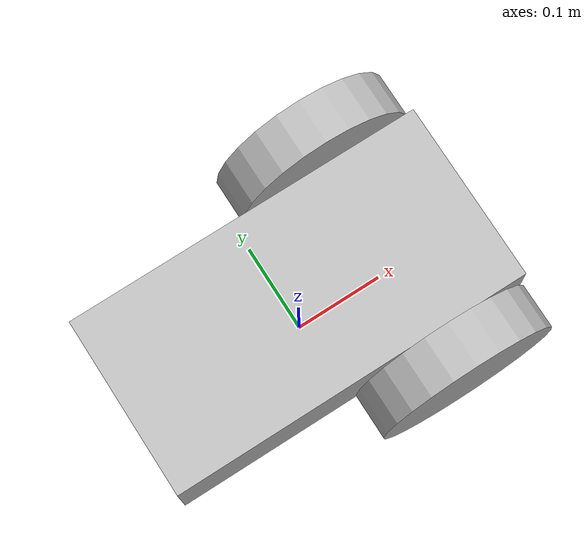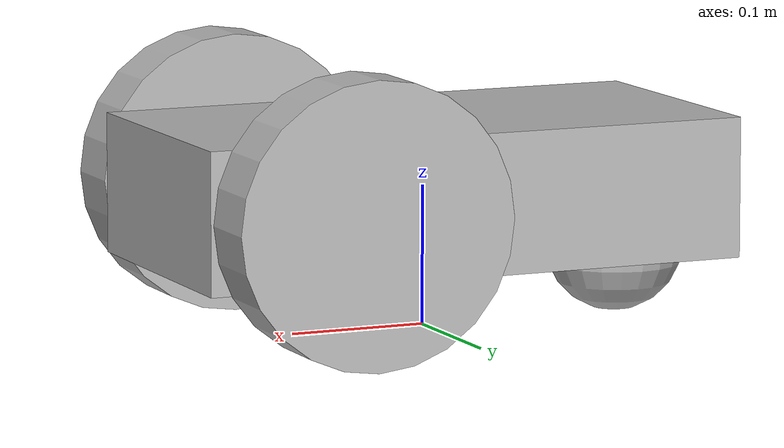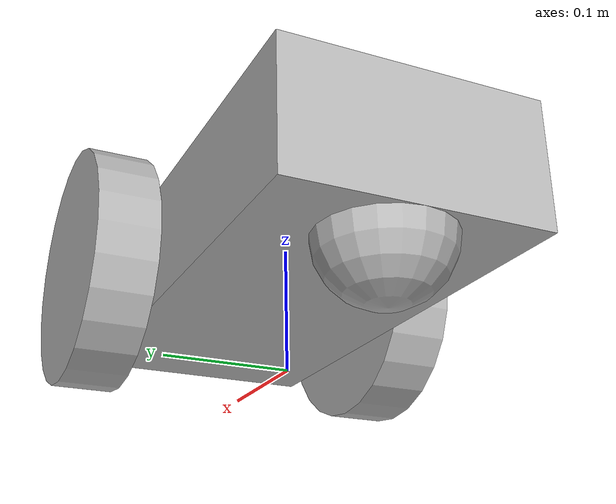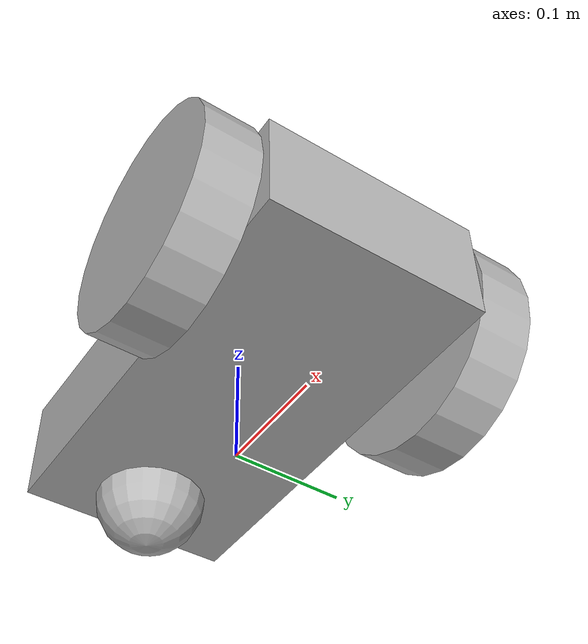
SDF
<?xml version='1.0'?>
    <sdf version='1.4'>
      <model name="my_robot">
		<static>false</static>
		 <!--Posisi Awal-->

		<link name='chassis'>
          <pose>0 0 .1 0 0 0</pose>
          <collision name='collision'>
            <geometry>
              <box>
                <size>.4 .2 .1</size>
              </box>
            </geometry>
          </collision>

		 <!--Bentuk-->
          <visual name='visual'>
            <geometry>
              <box>
                <size>.4 .2 .1</size>
              </box>
            </geometry>
          </visual>

          <collision name='caster_collision'>
            <pose>-0.15 0 -0.05 0 0 0</pose>
            <geometry>
              <sphere>
              <radius>.05</radius>
            </sphere>
          </geometry>

          <surface>
            <friction>
              <ode>
                <mu>0</mu>
                <mu2>0</mu2>
                <slip1>1.0</slip1>
                <slip2>1.0</slip2>
              </ode>
            </friction>
          </surface>
        </collision>

        <visual name='caster_visual'>
          <pose>-0.15 0 -0.05 0 0 0</pose>
          <geometry>
            <sphere>
              <radius>.05</radius>
            </sphere>
          </geometry>
        </visual>
      </link>
      <link name="left_wheel">
        <pose>0.1 0.13 0.1 0 1.5707 1.5707</pose>
        <collision name="collision">
          <geometry>
            <cylinder>
              <radius>.1</radius>
              <length>.05</length>
            </cylinder>
          </geometry>
        </collision>
        <visual name="visual">
          <geometry>
            <cylinder>
              <radius>.1</radius>
              <length>.05</length>
            </cylinder>
          </geometry>
        </visual>
      </link>

      <link name="right_wheel">
        <pose>0.1 -0.13 0.1 0 1.5707 1.5707</pose>
        <collision name="collision">
          <geometry>
            <cylinder>
              <radius>.1</radius>
              <length>.05</length>
            </cylinder>
          </geometry>
        </collision>
        <visual name="visual">
          <geometry>
            <cylinder>
              <radius>.1</radius>
              <length>.05</length>
            </cylinder>
          </geometry>
        </visual>
      </link>

	 <!--Add Joint-->
      <joint type="revolute" name="left_wheel_joint">
        <pose>0 0 -0.03 0 0 0</pose>
        <child>left_wheel</child>
        <parent>chassis</parent>
        <axis>
          <xyz>0 1 0</xyz>
        </axis>
      </joint>

      <joint type="revolute" name="right_wheel_joint">
        <pose>0 0 0.03 0 0 0</pose>
        <child>right_wheel</child>
        <parent>chassis</parent>
        <axis>
          <xyz>0 1 0</xyz>
        </axis>
      </joint>

      <!--Add Sensor-->
		<plugin name="set_speed_joint_plugin" filename="libset_speed_joint_plugin.so">
		<namespace_model>simple_robot</namespace_model>
		<activate_pid_control>yes</activate_pid_control>
		<wheel_kp>0.1</wheel_kp>
		<wheel_ki>0.0</wheel_ki>
		<wheel_kd>0.0</wheel_kd>
		</plugin>

      </model>
    </sdf>
